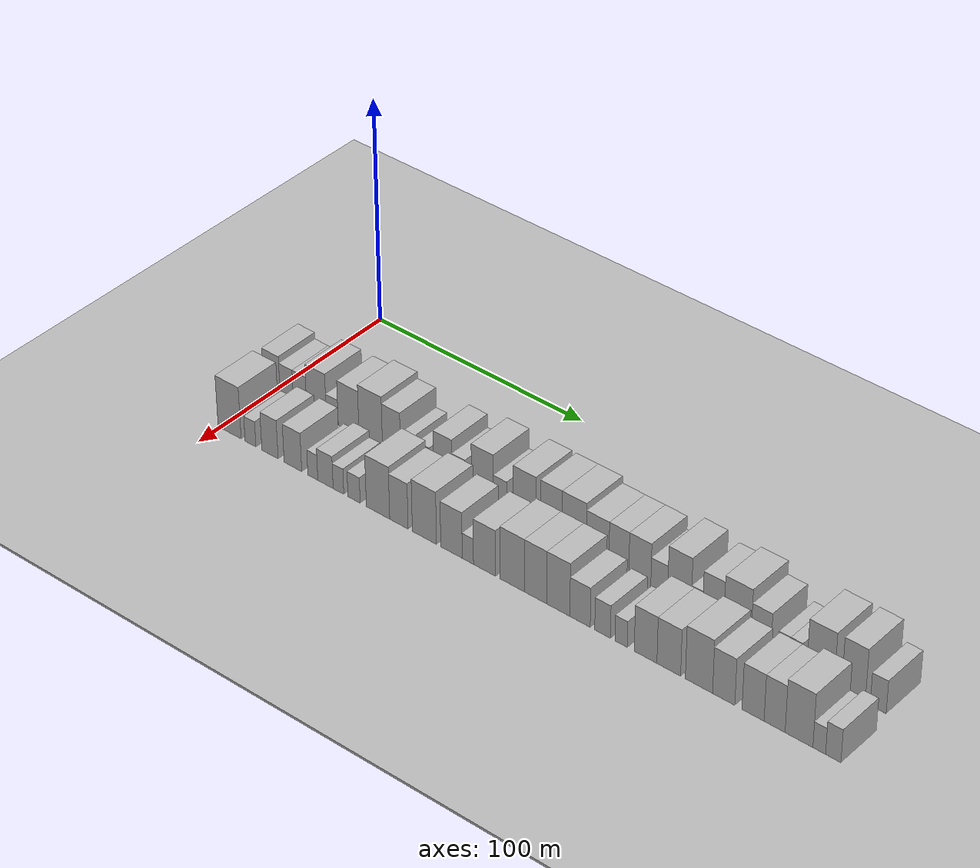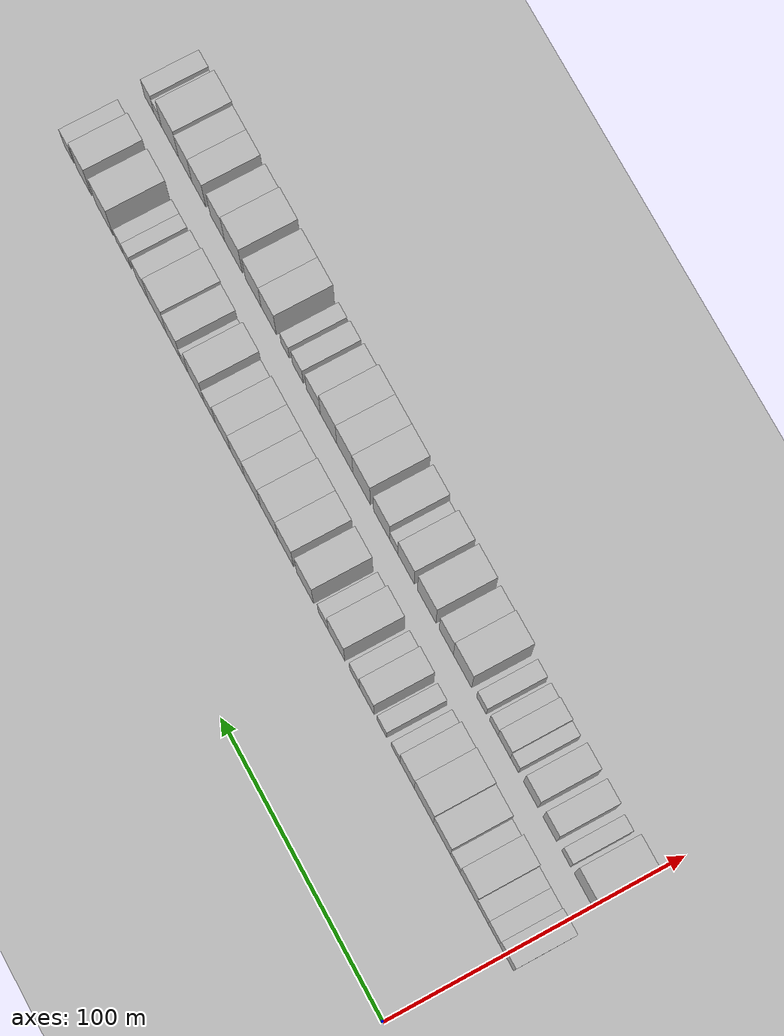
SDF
<sdf version="1.6">
 <world name="default">
  <include><name>ground_plane_1</name><uri>model://HANNAS_ground_plane</uri></include>
  <include>
   <name>ground_plane_2</name>
   <uri>model://HANNAS_ground_plane</uri>
   <pose>100 0 0  0 0 0</pose>
  </include>
  <model name="building_31">
   <static>1</static>
   <pose>50.0000 -0.7885 0 0.000000 0.000000 0.000000</pose>
   <link name="link">
    <pose>0 0 9.00 0 0 0</pose>
    <collision name="collision"><geometry><box><size>20.0000 8.5702 18.0000</size></box></geometry></collision>
    <visual name="visual">
     <cast_shadows>0</cast_shadows>
     <geometry><box><size>20.0000 8.5702 18.0000</size></box></geometry>
     <material>
      <script>
       <uri>model://HANNAS_wall/materials/scripts</uri>
       <uri>model://HANNAS_wall/materials/textures</uri>
       <name>vrc/HANNAS_wall</name>
      </script>
     </material>
    </visual>
   </link>
  </model>
  <model name="building_32">
   <static>1</static>
   <pose>50.0000 6.8658 0 0.000000 0.000000 0.000000</pose>
   <link name="link">
    <pose>0 0 7.50 0 0 0</pose>
    <collision name="collision"><geometry><box><size>20.0000 6.7384 15.0000</size></box></geometry></collision>
    <visual name="visual">
     <cast_shadows>0</cast_shadows>
     <geometry><box><size>20.0000 6.7384 15.0000</size></box></geometry>
     <material>
      <script>
       <uri>model://HANNAS_wall/materials/scripts</uri>
       <uri>model://HANNAS_wall/materials/textures</uri>
       <name>vrc/HANNAS_wall</name>
      </script>
     </material>
    </visual>
   </link>
  </model>
  <model name="building_33">
   <static>1</static>
   <pose>50.0000 13.6078 0 0.000000 0.000000 0.000000</pose>
   <link name="link">
    <pose>0 0 7.50 0 0 0</pose>
    <collision name="collision"><geometry><box><size>20.0000 6.7456 15.0000</size></box></geometry></collision>
    <visual name="visual">
     <cast_shadows>0</cast_shadows>
     <geometry><box><size>20.0000 6.7456 15.0000</size></box></geometry>
     <material>
      <script>
       <uri>model://HANNAS_wall/materials/scripts</uri>
       <uri>model://HANNAS_wall/materials/textures</uri>
       <name>vrc/HANNAS_wall</name>
      </script>
     </material>
    </visual>
   </link>
  </model>
  <model name="building_34">
   <static>1</static>
   <pose>50.0000 21.9241 0 0.000000 0.000000 0.000000</pose>
   <link name="link">
    <pose>0 0 10.50 0 0 0</pose>
    <collision name="collision"><geometry><box><size>20.0000 9.8871 21.0000</size></box></geometry></collision>
    <visual name="visual">
     <cast_shadows>0</cast_shadows>
     <geometry><box><size>20.0000 9.8871 21.0000</size></box></geometry>
     <material>
      <script>
       <uri>model://HANNAS_wall/materials/scripts</uri>
       <uri>model://HANNAS_wall/materials/textures</uri>
       <name>vrc/HANNAS_wall</name>
      </script>
     </material>
    </visual>
   </link>
  </model>
  <model name="building_35">
   <static>1</static>
   <pose>50.0000 29.8331 0 0.000000 0.000000 0.000000</pose>
   <link name="link">
    <pose>0 0 6.00 0 0 0</pose>
    <collision name="collision"><geometry><box><size>20.0000 5.9308 12.0000</size></box></geometry></collision>
    <visual name="visual">
     <cast_shadows>0</cast_shadows>
     <geometry><box><size>20.0000 5.9308 12.0000</size></box></geometry>
     <material>
      <script>
       <uri>model://HANNAS_wall/materials/scripts</uri>
       <uri>model://HANNAS_wall/materials/textures</uri>
       <name>vrc/HANNAS_wall</name>
      </script>
     </material>
    </visual>
   </link>
  </model>
  <model name="building_36">
   <static>1</static>
   <pose>50.0000 37.9600 0 0.000000 0.000000 0.000000</pose>
   <link name="link">
    <pose>0 0 10.50 0 0 0</pose>
    <collision name="collision"><geometry><box><size>20.0000 10.3231 21.0000</size></box></geometry></collision>
    <visual name="visual">
     <cast_shadows>0</cast_shadows>
     <geometry><box><size>20.0000 10.3231 21.0000</size></box></geometry>
     <material>
      <script>
       <uri>model://HANNAS_wall/materials/scripts</uri>
       <uri>model://HANNAS_wall/materials/textures</uri>
       <name>vrc/HANNAS_wall</name>
      </script>
     </material>
    </visual>
   </link>
  </model>
  <model name="building_37">
   <static>1</static>
   <pose>50.0000 48.8931 0 0.000000 0.000000 0.000000</pose>
   <link name="link">
    <pose>0 0 12.00 0 0 0</pose>
    <collision name="collision"><geometry><box><size>20.0000 11.5431 24.0000</size></box></geometry></collision>
    <visual name="visual">
     <cast_shadows>0</cast_shadows>
     <geometry><box><size>20.0000 11.5431 24.0000</size></box></geometry>
     <material>
      <script>
       <uri>model://HANNAS_wall/materials/scripts</uri>
       <uri>model://HANNAS_wall/materials/textures</uri>
       <name>vrc/HANNAS_wall</name>
      </script>
     </material>
    </visual>
   </link>
  </model>
  <model name="building_38">
   <static>1</static>
   <pose>50.0000 59.0876 0 0.000000 0.000000 0.000000</pose>
   <link name="link">
    <pose>0 0 10.50 0 0 0</pose>
    <collision name="collision"><geometry><box><size>20.0000 8.8458 21.0000</size></box></geometry></collision>
    <visual name="visual">
     <cast_shadows>0</cast_shadows>
     <geometry><box><size>20.0000 8.8458 21.0000</size></box></geometry>
     <material>
      <script>
       <uri>model://HANNAS_wall/materials/scripts</uri>
       <uri>model://HANNAS_wall/materials/textures</uri>
       <name>vrc/HANNAS_wall</name>
      </script>
     </material>
    </visual>
   </link>
  </model>
  <model name="building_39">
   <static>1</static>
   <pose>50.0000 66.1097 0 0.000000 0.000000 0.000000</pose>
   <link name="link">
    <pose>0 0 6.00 0 0 0</pose>
    <collision name="collision"><geometry><box><size>20.0000 5.1983 12.0000</size></box></geometry></collision>
    <visual name="visual">
     <cast_shadows>0</cast_shadows>
     <geometry><box><size>20.0000 5.1983 12.0000</size></box></geometry>
     <material>
      <script>
       <uri>model://HANNAS_wall/materials/scripts</uri>
       <uri>model://HANNAS_wall/materials/textures</uri>
       <name>vrc/HANNAS_wall</name>
      </script>
     </material>
    </visual>
   </link>
  </model>
  <model name="building_40">
   <static>1</static>
   <pose>50.0000 74.5952 0 0.000000 0.000000 0.000000</pose>
   <link name="link">
    <pose>0 0 6.00 0 0 0</pose>
    <collision name="collision"><geometry><box><size>20.0000 5.7728 12.0000</size></box></geometry></collision>
    <visual name="visual">
     <cast_shadows>0</cast_shadows>
     <geometry><box><size>20.0000 5.7728 12.0000</size></box></geometry>
     <material>
      <script>
       <uri>model://HANNAS_wall/materials/scripts</uri>
       <uri>model://HANNAS_wall/materials/textures</uri>
       <name>vrc/HANNAS_wall</name>
      </script>
     </material>
    </visual>
   </link>
  </model>
  <model name="building_41">
   <static>1</static>
   <pose>50.0000 83.8726 0 0.000000 0.000000 0.000000</pose>
   <link name="link">
    <pose>0 0 10.50 0 0 0</pose>
    <collision name="collision"><geometry><box><size>20.0000 8.7820 21.0000</size></box></geometry></collision>
    <visual name="visual">
     <cast_shadows>0</cast_shadows>
     <geometry><box><size>20.0000 8.7820 21.0000</size></box></geometry>
     <material>
      <script>
       <uri>model://HANNAS_wall/materials/scripts</uri>
       <uri>model://HANNAS_wall/materials/textures</uri>
       <name>vrc/HANNAS_wall</name>
      </script>
     </material>
    </visual>
   </link>
  </model>
  <model name="building_42">
   <static>1</static>
   <pose>50.0000 91.4099 0 0.000000 0.000000 0.000000</pose>
   <link name="link">
    <pose>0 0 7.50 0 0 0</pose>
    <collision name="collision"><geometry><box><size>20.0000 6.2925 15.0000</size></box></geometry></collision>
    <visual name="visual">
     <cast_shadows>0</cast_shadows>
     <geometry><box><size>20.0000 6.2925 15.0000</size></box></geometry>
     <material>
      <script>
       <uri>model://HANNAS_wall/materials/scripts</uri>
       <uri>model://HANNAS_wall/materials/textures</uri>
       <name>vrc/HANNAS_wall</name>
      </script>
     </material>
    </visual>
   </link>
  </model>
  <model name="building_43">
   <static>1</static>
   <pose>50.0000 102.6996 0 0.000000 0.000000 0.000000</pose>
   <link name="link">
    <pose>0 0 12.00 0 0 0</pose>
    <collision name="collision"><geometry><box><size>20.0000 10.2869 24.0000</size></box></geometry></collision>
    <visual name="visual">
     <cast_shadows>0</cast_shadows>
     <geometry><box><size>20.0000 10.2869 24.0000</size></box></geometry>
     <material>
      <script>
       <uri>model://HANNAS_wall/materials/scripts</uri>
       <uri>model://HANNAS_wall/materials/textures</uri>
       <name>vrc/HANNAS_wall</name>
      </script>
     </material>
    </visual>
   </link>
  </model>
  <model name="building_44">
   <static>1</static>
   <pose>50.0000 110.9824 0 0.000000 0.000000 0.000000</pose>
   <link name="link">
    <pose>0 0 7.50 0 0 0</pose>
    <collision name="collision"><geometry><box><size>20.0000 6.2788 15.0000</size></box></geometry></collision>
    <visual name="visual">
     <cast_shadows>0</cast_shadows>
     <geometry><box><size>20.0000 6.2788 15.0000</size></box></geometry>
     <material>
      <script>
       <uri>model://HANNAS_wall/materials/scripts</uri>
       <uri>model://HANNAS_wall/materials/textures</uri>
       <name>vrc/HANNAS_wall</name>
      </script>
     </material>
    </visual>
   </link>
  </model>
  <model name="building_45">
   <static>1</static>
   <pose>50.0000 122.3922 0 0.000000 0.000000 0.000000</pose>
   <link name="link">
    <pose>0 0 12.00 0 0 0</pose>
    <collision name="collision"><geometry><box><size>20.0000 10.5407 24.0000</size></box></geometry></collision>
    <visual name="visual">
     <cast_shadows>0</cast_shadows>
     <geometry><box><size>20.0000 10.5407 24.0000</size></box></geometry>
     <material>
      <script>
       <uri>model://HANNAS_wall/materials/scripts</uri>
       <uri>model://HANNAS_wall/materials/textures</uri>
       <name>vrc/HANNAS_wall</name>
      </script>
     </material>
    </visual>
   </link>
  </model>
  <model name="building_46">
   <static>1</static>
   <pose>50.0000 134.6356 0 0.000000 0.000000 0.000000</pose>
   <link name="link">
    <pose>0 0 12.00 0 0 0</pose>
    <collision name="collision"><geometry><box><size>20.0000 9.9462 24.0000</size></box></geometry></collision>
    <visual name="visual">
     <cast_shadows>0</cast_shadows>
     <geometry><box><size>20.0000 9.9462 24.0000</size></box></geometry>
     <material>
      <script>
       <uri>model://HANNAS_wall/materials/scripts</uri>
       <uri>model://HANNAS_wall/materials/textures</uri>
       <name>vrc/HANNAS_wall</name>
      </script>
     </material>
    </visual>
   </link>
  </model>
  <model name="building_47">
   <static>1</static>
   <pose>50.0000 145.1121 0 0.000000 0.000000 0.000000</pose>
   <link name="link">
    <pose>0 0 12.00 0 0 0</pose>
    <collision name="collision"><geometry><box><size>20.0000 11.0066 24.0000</size></box></geometry></collision>
    <visual name="visual">
     <cast_shadows>0</cast_shadows>
     <geometry><box><size>20.0000 11.0066 24.0000</size></box></geometry>
     <material>
      <script>
       <uri>model://HANNAS_wall/materials/scripts</uri>
       <uri>model://HANNAS_wall/materials/textures</uri>
       <name>vrc/HANNAS_wall</name>
      </script>
     </material>
    </visual>
   </link>
  </model>
  <model name="building_48">
   <static>1</static>
   <pose>50.0000 155.7052 0 0.000000 0.000000 0.000000</pose>
   <link name="link">
    <pose>0 0 10.50 0 0 0</pose>
    <collision name="collision"><geometry><box><size>20.0000 10.1797 21.0000</size></box></geometry></collision>
    <visual name="visual">
     <cast_shadows>0</cast_shadows>
     <geometry><box><size>20.0000 10.1797 21.0000</size></box></geometry>
     <material>
      <script>
       <uri>model://HANNAS_wall/materials/scripts</uri>
       <uri>model://HANNAS_wall/materials/textures</uri>
       <name>vrc/HANNAS_wall</name>
      </script>
     </material>
    </visual>
   </link>
  </model>
  <model name="building_49">
   <static>1</static>
   <pose>50.0000 165.2450 0 0.000000 0.000000 0.000000</pose>
   <link name="link">
    <pose>0 0 10.50 0 0 0</pose>
    <collision name="collision"><geometry><box><size>20.0000 8.8998 21.0000</size></box></geometry></collision>
    <visual name="visual">
     <cast_shadows>0</cast_shadows>
     <geometry><box><size>20.0000 8.8998 21.0000</size></box></geometry>
     <material>
      <script>
       <uri>model://HANNAS_wall/materials/scripts</uri>
       <uri>model://HANNAS_wall/materials/textures</uri>
       <name>vrc/HANNAS_wall</name>
      </script>
     </material>
    </visual>
   </link>
  </model>
  <model name="building_50">
   <static>1</static>
   <pose>50.0000 174.5735 0 0.000000 0.000000 0.000000</pose>
   <link name="link">
    <pose>0 0 10.50 0 0 0</pose>
    <collision name="collision"><geometry><box><size>20.0000 9.7571 21.0000</size></box></geometry></collision>
    <visual name="visual">
     <cast_shadows>0</cast_shadows>
     <geometry><box><size>20.0000 9.7571 21.0000</size></box></geometry>
     <material>
      <script>
       <uri>model://HANNAS_wall/materials/scripts</uri>
       <uri>model://HANNAS_wall/materials/textures</uri>
       <name>vrc/HANNAS_wall</name>
      </script>
     </material>
    </visual>
   </link>
  </model>
  <model name="building_51">
   <static>1</static>
   <pose>50.0000 183.1616 0 0.000000 0.000000 0.000000</pose>
   <link name="link">
    <pose>0 0 7.50 0 0 0</pose>
    <collision name="collision"><geometry><box><size>20.0000 7.4192 15.0000</size></box></geometry></collision>
    <visual name="visual">
     <cast_shadows>0</cast_shadows>
     <geometry><box><size>20.0000 7.4192 15.0000</size></box></geometry>
     <material>
      <script>
       <uri>model://HANNAS_wall/materials/scripts</uri>
       <uri>model://HANNAS_wall/materials/textures</uri>
       <name>vrc/HANNAS_wall</name>
      </script>
     </material>
    </visual>
   </link>
  </model>
  <model name="building_52">
   <static>1</static>
   <pose>50.0000 192.0234 0 0.000000 0.000000 0.000000</pose>
   <link name="link">
    <pose>0 0 12.00 0 0 0</pose>
    <collision name="collision"><geometry><box><size>20.0000 10.3044 24.0000</size></box></geometry></collision>
    <visual name="visual">
     <cast_shadows>0</cast_shadows>
     <geometry><box><size>20.0000 10.3044 24.0000</size></box></geometry>
     <material>
      <script>
       <uri>model://HANNAS_wall/materials/scripts</uri>
       <uri>model://HANNAS_wall/materials/textures</uri>
       <name>vrc/HANNAS_wall</name>
      </script>
     </material>
    </visual>
   </link>
  </model>
  <model name="building_53">
   <static>1</static>
   <pose>50.0000 199.6400 0 0.000000 0.000000 0.000000</pose>
   <link name="link">
    <pose>0 0 6.00 0 0 0</pose>
    <collision name="collision"><geometry><box><size>20.0000 4.9287 12.0000</size></box></geometry></collision>
    <visual name="visual">
     <cast_shadows>0</cast_shadows>
     <geometry><box><size>20.0000 4.9287 12.0000</size></box></geometry>
     <material>
      <script>
       <uri>model://HANNAS_wall/materials/scripts</uri>
       <uri>model://HANNAS_wall/materials/textures</uri>
       <name>vrc/HANNAS_wall</name>
      </script>
     </material>
    </visual>
   </link>
  </model>
  <model name="building_54">
   <static>1</static>
   <pose>50.0000 206.6869 0 0.000000 0.000000 0.000000</pose>
   <link name="link">
    <pose>0 0 10.50 0 0 0</pose>
    <collision name="collision"><geometry><box><size>20.0000 9.1651 21.0000</size></box></geometry></collision>
    <visual name="visual">
     <cast_shadows>0</cast_shadows>
     <geometry><box><size>20.0000 9.1651 21.0000</size></box></geometry>
     <material>
      <script>
       <uri>model://HANNAS_wall/materials/scripts</uri>
       <uri>model://HANNAS_wall/materials/textures</uri>
       <name>vrc/HANNAS_wall</name>
      </script>
     </material>
    </visual>
   </link>
  </model>
  <model name="building_55">
   <static>1</static>
   <pose>50.0000 217.1138 0 0.000000 0.000000 0.000000</pose>
   <link name="link">
    <pose>0 0 12.00 0 0 0</pose>
    <collision name="collision"><geometry><box><size>20.0000 11.6887 24.0000</size></box></geometry></collision>
    <visual name="visual">
     <cast_shadows>0</cast_shadows>
     <geometry><box><size>20.0000 11.6887 24.0000</size></box></geometry>
     <material>
      <script>
       <uri>model://HANNAS_wall/materials/scripts</uri>
       <uri>model://HANNAS_wall/materials/textures</uri>
       <name>vrc/HANNAS_wall</name>
      </script>
     </material>
    </visual>
   </link>
  </model>
  <model name="building_56">
   <static>1</static>
   <pose>50.0000 227.1906 0 0.000000 0.000000 0.000000</pose>
   <link name="link">
    <pose>0 0 9.00 0 0 0</pose>
    <collision name="collision"><geometry><box><size>20.0000 8.4649 18.0000</size></box></geometry></collision>
    <visual name="visual">
     <cast_shadows>0</cast_shadows>
     <geometry><box><size>20.0000 8.4649 18.0000</size></box></geometry>
     <material>
      <script>
       <uri>model://HANNAS_wall/materials/scripts</uri>
       <uri>model://HANNAS_wall/materials/textures</uri>
       <name>vrc/HANNAS_wall</name>
      </script>
     </material>
    </visual>
   </link>
  </model>
  <model name="building_57">
   <static>1</static>
   <pose>50.0000 236.9264 0 0.000000 0.000000 0.000000</pose>
   <link name="link">
    <pose>0 0 6.00 0 0 0</pose>
    <collision name="collision"><geometry><box><size>20.0000 5.0067 12.0000</size></box></geometry></collision>
    <visual name="visual">
     <cast_shadows>0</cast_shadows>
     <geometry><box><size>20.0000 5.0067 12.0000</size></box></geometry>
     <material>
      <script>
       <uri>model://HANNAS_wall/materials/scripts</uri>
       <uri>model://HANNAS_wall/materials/textures</uri>
       <name>vrc/HANNAS_wall</name>
      </script>
     </material>
    </visual>
   </link>
  </model>
  <model name="building_58">
   <static>1</static>
   <pose>50.0000 241.9658 0 0.000000 0.000000 0.000000</pose>
   <link name="link">
    <pose>0 0 6.00 0 0 0</pose>
    <collision name="collision"><geometry><box><size>20.0000 5.0721 12.0000</size></box></geometry></collision>
    <visual name="visual">
     <cast_shadows>0</cast_shadows>
     <geometry><box><size>20.0000 5.0721 12.0000</size></box></geometry>
     <material>
      <script>
       <uri>model://HANNAS_wall/materials/scripts</uri>
       <uri>model://HANNAS_wall/materials/textures</uri>
       <name>vrc/HANNAS_wall</name>
      </script>
     </material>
    </visual>
   </link>
  </model>
  <model name="building_59">
   <static>1</static>
   <pose>50.0000 252.2399 0 0.000000 0.000000 0.000000</pose>
   <link name="link">
    <pose>0 0 12.00 0 0 0</pose>
    <collision name="collision"><geometry><box><size>20.0000 11.4761 24.0000</size></box></geometry></collision>
    <visual name="visual">
     <cast_shadows>0</cast_shadows>
     <geometry><box><size>20.0000 11.4761 24.0000</size></box></geometry>
     <material>
      <script>
       <uri>model://HANNAS_wall/materials/scripts</uri>
       <uri>model://HANNAS_wall/materials/textures</uri>
       <name>vrc/HANNAS_wall</name>
      </script>
     </material>
    </visual>
   </link>
  </model>
  <model name="building_60">
   <static>1</static>
   <pose>50.0000 265.8508 0 0.000000 0.000000 0.000000</pose>
   <link name="link">
    <pose>0 0 12.00 0 0 0</pose>
    <collision name="collision"><geometry><box><size>20.0000 9.7458 24.0000</size></box></geometry></collision>
    <visual name="visual">
     <cast_shadows>0</cast_shadows>
     <geometry><box><size>20.0000 9.7458 24.0000</size></box></geometry>
     <material>
      <script>
       <uri>model://HANNAS_wall/materials/scripts</uri>
       <uri>model://HANNAS_wall/materials/textures</uri>
       <name>vrc/HANNAS_wall</name>
      </script>
     </material>
    </visual>
   </link>
  </model>
  <model name="building_61">
   <static>1</static>
   <pose>50.0000 275.9889 0 0.000000 0.000000 0.000000</pose>
   <link name="link">
    <pose>0 0 7.50 0 0 0</pose>
    <collision name="collision"><geometry><box><size>20.0000 6.5304 15.0000</size></box></geometry></collision>
    <visual name="visual">
     <cast_shadows>0</cast_shadows>
     <geometry><box><size>20.0000 6.5304 15.0000</size></box></geometry>
     <material>
      <script>
       <uri>model://HANNAS_wall/materials/scripts</uri>
       <uri>model://HANNAS_wall/materials/textures</uri>
       <name>vrc/HANNAS_wall</name>
      </script>
     </material>
    </visual>
   </link>
  </model>
  <model name="building_93">
   <static>1</static>
   <pose>79.0000 5.1922 0 0.000000 0.000000 0.000000</pose>
   <link name="link">
    <pose>0 0 12.00 0 0 0</pose>
    <collision name="collision"><geometry><box><size>20.0000 11.6505 24.0000</size></box></geometry></collision>
    <visual name="visual">
     <cast_shadows>0</cast_shadows>
     <geometry><box><size>20.0000 11.6505 24.0000</size></box></geometry>
     <material>
      <script>
       <uri>model://HANNAS_wall/materials/scripts</uri>
       <uri>model://HANNAS_wall/materials/textures</uri>
       <name>vrc/HANNAS_wall</name>
      </script>
     </material>
    </visual>
   </link>
  </model>
  <model name="building_94">
   <static>1</static>
   <pose>79.0000 15.7318 0 0.000000 0.000000 0.000000</pose>
   <link name="link">
    <pose>0 0 6.00 0 0 0</pose>
    <collision name="collision"><geometry><box><size>20.0000 5.4286 12.0000</size></box></geometry></collision>
    <visual name="visual">
     <cast_shadows>0</cast_shadows>
     <geometry><box><size>20.0000 5.4286 12.0000</size></box></geometry>
     <material>
      <script>
       <uri>model://HANNAS_wall/materials/scripts</uri>
       <uri>model://HANNAS_wall/materials/textures</uri>
       <name>vrc/HANNAS_wall</name>
      </script>
     </material>
    </visual>
   </link>
  </model>
  <model name="building_95">
   <static>1</static>
   <pose>79.0000 25.4994 0 0.000000 0.000000 0.000000</pose>
   <link name="link">
    <pose>0 0 9.00 0 0 0</pose>
    <collision name="collision"><geometry><box><size>20.0000 8.1065 18.0000</size></box></geometry></collision>
    <visual name="visual">
     <cast_shadows>0</cast_shadows>
     <geometry><box><size>20.0000 8.1065 18.0000</size></box></geometry>
     <material>
      <script>
       <uri>model://HANNAS_wall/materials/scripts</uri>
       <uri>model://HANNAS_wall/materials/textures</uri>
       <name>vrc/HANNAS_wall</name>
      </script>
     </material>
    </visual>
   </link>
  </model>
  <model name="building_96">
   <static>1</static>
   <pose>79.0000 36.9092 0 0.000000 0.000000 0.000000</pose>
   <link name="link">
    <pose>0 0 9.00 0 0 0</pose>
    <collision name="collision"><geometry><box><size>20.0000 8.7132 18.0000</size></box></geometry></collision>
    <visual name="visual">
     <cast_shadows>0</cast_shadows>
     <geometry><box><size>20.0000 8.7132 18.0000</size></box></geometry>
     <material>
      <script>
       <uri>model://HANNAS_wall/materials/scripts</uri>
       <uri>model://HANNAS_wall/materials/textures</uri>
       <name>vrc/HANNAS_wall</name>
      </script>
     </material>
    </visual>
   </link>
  </model>
  <model name="building_97">
   <static>1</static>
   <pose>79.0000 46.7136 0 0.000000 0.000000 0.000000</pose>
   <link name="link">
    <pose>0 0 6.00 0 0 0</pose>
    <collision name="collision"><geometry><box><size>20.0000 4.8956 12.0000</size></box></geometry></collision>
    <visual name="visual">
     <cast_shadows>0</cast_shadows>
     <geometry><box><size>20.0000 4.8956 12.0000</size></box></geometry>
     <material>
      <script>
       <uri>model://HANNAS_wall/materials/scripts</uri>
       <uri>model://HANNAS_wall/materials/textures</uri>
       <name>vrc/HANNAS_wall</name>
      </script>
     </material>
    </visual>
   </link>
  </model>
  <model name="building_98">
   <static>1</static>
   <pose>79.0000 52.9090 0 0.000000 0.000000 0.000000</pose>
   <link name="link">
    <pose>0 0 7.50 0 0 0</pose>
    <collision name="collision"><geometry><box><size>20.0000 7.4953 15.0000</size></box></geometry></collision>
    <visual name="visual">
     <cast_shadows>0</cast_shadows>
     <geometry><box><size>20.0000 7.4953 15.0000</size></box></geometry>
     <material>
      <script>
       <uri>model://HANNAS_wall/materials/scripts</uri>
       <uri>model://HANNAS_wall/materials/textures</uri>
       <name>vrc/HANNAS_wall</name>
      </script>
     </material>
    </visual>
   </link>
  </model>
  <model name="building_99">
   <static>1</static>
   <pose>79.0000 59.2433 0 0.000000 0.000000 0.000000</pose>
   <link name="link">
    <pose>0 0 6.00 0 0 0</pose>
    <collision name="collision"><geometry><box><size>20.0000 5.1733 12.0000</size></box></geometry></collision>
    <visual name="visual">
     <cast_shadows>0</cast_shadows>
     <geometry><box><size>20.0000 5.1733 12.0000</size></box></geometry>
     <material>
      <script>
       <uri>model://HANNAS_wall/materials/scripts</uri>
       <uri>model://HANNAS_wall/materials/textures</uri>
       <name>vrc/HANNAS_wall</name>
      </script>
     </material>
    </visual>
   </link>
  </model>
  <model name="building_100">
   <static>1</static>
   <pose>79.0000 66.7829 0 0.000000 0.000000 0.000000</pose>
   <link name="link">
    <pose>0 0 6.00 0 0 0</pose>
    <collision name="collision"><geometry><box><size>20.0000 5.9058 12.0000</size></box></geometry></collision>
    <visual name="visual">
     <cast_shadows>0</cast_shadows>
     <geometry><box><size>20.0000 5.9058 12.0000</size></box></geometry>
     <material>
      <script>
       <uri>model://HANNAS_wall/materials/scripts</uri>
       <uri>model://HANNAS_wall/materials/textures</uri>
       <name>vrc/HANNAS_wall</name>
      </script>
     </material>
    </visual>
   </link>
  </model>
  <model name="building_101">
   <static>1</static>
   <pose>79.0000 78.3287 0 0.000000 0.000000 0.000000</pose>
   <link name="link">
    <pose>0 0 12.00 0 0 0</pose>
    <collision name="collision"><geometry><box><size>20.0000 11.1857 24.0000</size></box></geometry></collision>
    <visual name="visual">
     <cast_shadows>0</cast_shadows>
     <geometry><box><size>20.0000 11.1857 24.0000</size></box></geometry>
     <material>
      <script>
       <uri>model://HANNAS_wall/materials/scripts</uri>
       <uri>model://HANNAS_wall/materials/textures</uri>
       <name>vrc/HANNAS_wall</name>
      </script>
     </material>
    </visual>
   </link>
  </model>
  <model name="building_102">
   <static>1</static>
   <pose>79.0000 88.2917 0 0.000000 0.000000 0.000000</pose>
   <link name="link">
    <pose>0 0 10.50 0 0 0</pose>
    <collision name="collision"><geometry><box><size>20.0000 8.7404 21.0000</size></box></geometry></collision>
    <visual name="visual">
     <cast_shadows>0</cast_shadows>
     <geometry><box><size>20.0000 8.7404 21.0000</size></box></geometry>
     <material>
      <script>
       <uri>model://HANNAS_wall/materials/scripts</uri>
       <uri>model://HANNAS_wall/materials/textures</uri>
       <name>vrc/HANNAS_wall</name>
      </script>
     </material>
    </visual>
   </link>
  </model>
  <model name="building_103">
   <static>1</static>
   <pose>79.0000 100.3421 0 0.000000 0.000000 0.000000</pose>
   <link name="link">
    <pose>0 0 12.00 0 0 0</pose>
    <collision name="collision"><geometry><box><size>20.0000 11.3603 24.0000</size></box></geometry></collision>
    <visual name="visual">
     <cast_shadows>0</cast_shadows>
     <geometry><box><size>20.0000 11.3603 24.0000</size></box></geometry>
     <material>
      <script>
       <uri>model://HANNAS_wall/materials/scripts</uri>
       <uri>model://HANNAS_wall/materials/textures</uri>
       <name>vrc/HANNAS_wall</name>
      </script>
     </material>
    </visual>
   </link>
  </model>
  <model name="building_104">
   <static>1</static>
   <pose>79.0000 113.0134 0 0.000000 0.000000 0.000000</pose>
   <link name="link">
    <pose>0 0 10.50 0 0 0</pose>
    <collision name="collision"><geometry><box><size>20.0000 9.9824 21.0000</size></box></geometry></collision>
    <visual name="visual">
     <cast_shadows>0</cast_shadows>
     <geometry><box><size>20.0000 9.9824 21.0000</size></box></geometry>
     <material>
      <script>
       <uri>model://HANNAS_wall/materials/scripts</uri>
       <uri>model://HANNAS_wall/materials/textures</uri>
       <name>vrc/HANNAS_wall</name>
      </script>
     </material>
    </visual>
   </link>
  </model>
  <model name="building_105">
   <static>1</static>
   <pose>79.0000 120.6025 0 0.000000 0.000000 0.000000</pose>
   <link name="link">
    <pose>0 0 6.00 0 0 0</pose>
    <collision name="collision"><geometry><box><size>20.0000 5.1959 12.0000</size></box></geometry></collision>
    <visual name="visual">
     <cast_shadows>0</cast_shadows>
     <geometry><box><size>20.0000 5.1959 12.0000</size></box></geometry>
     <material>
      <script>
       <uri>model://HANNAS_wall/materials/scripts</uri>
       <uri>model://HANNAS_wall/materials/textures</uri>
       <name>vrc/HANNAS_wall</name>
      </script>
     </material>
    </visual>
   </link>
  </model>
  <model name="building_106">
   <static>1</static>
   <pose>79.0000 128.2987 0 0.000000 0.000000 0.000000</pose>
   <link name="link">
    <pose>0 0 10.50 0 0 0</pose>
    <collision name="collision"><geometry><box><size>20.0000 10.1965 21.0000</size></box></geometry></collision>
    <visual name="visual">
     <cast_shadows>0</cast_shadows>
     <geometry><box><size>20.0000 10.1965 21.0000</size></box></geometry>
     <material>
      <script>
       <uri>model://HANNAS_wall/materials/scripts</uri>
       <uri>model://HANNAS_wall/materials/textures</uri>
       <name>vrc/HANNAS_wall</name>
      </script>
     </material>
    </visual>
   </link>
  </model>
  <model name="building_107">
   <static>1</static>
   <pose>79.0000 140.9201 0 0.000000 0.000000 0.000000</pose>
   <link name="link">
    <pose>0 0 12.00 0 0 0</pose>
    <collision name="collision"><geometry><box><size>20.0000 11.0461 24.0000</size></box></geometry></collision>
    <visual name="visual">
     <cast_shadows>0</cast_shadows>
     <geometry><box><size>20.0000 11.0461 24.0000</size></box></geometry>
     <material>
      <script>
       <uri>model://HANNAS_wall/materials/scripts</uri>
       <uri>model://HANNAS_wall/materials/textures</uri>
       <name>vrc/HANNAS_wall</name>
      </script>
     </material>
    </visual>
   </link>
  </model>
  <model name="building_108">
   <static>1</static>
   <pose>79.0000 151.5209 0 0.000000 0.000000 0.000000</pose>
   <link name="link">
    <pose>0 0 12.00 0 0 0</pose>
    <collision name="collision"><geometry><box><size>20.0000 10.1554 24.0000</size></box></geometry></collision>
    <visual name="visual">
     <cast_shadows>0</cast_shadows>
     <geometry><box><size>20.0000 10.1554 24.0000</size></box></geometry>
     <material>
      <script>
       <uri>model://HANNAS_wall/materials/scripts</uri>
       <uri>model://HANNAS_wall/materials/textures</uri>
       <name>vrc/HANNAS_wall</name>
      </script>
     </material>
    </visual>
   </link>
  </model>
  <model name="building_109">
   <static>1</static>
   <pose>79.0000 161.7505 0 0.000000 0.000000 0.000000</pose>
   <link name="link">
    <pose>0 0 12.00 0 0 0</pose>
    <collision name="collision"><geometry><box><size>20.0000 10.3038 24.0000</size></box></geometry></collision>
    <visual name="visual">
     <cast_shadows>0</cast_shadows>
     <geometry><box><size>20.0000 10.3038 24.0000</size></box></geometry>
     <material>
      <script>
       <uri>model://HANNAS_wall/materials/scripts</uri>
       <uri>model://HANNAS_wall/materials/textures</uri>
       <name>vrc/HANNAS_wall</name>
      </script>
     </material>
    </visual>
   </link>
  </model>
  <model name="building_110">
   <static>1</static>
   <pose>79.0000 171.3916 0 0.000000 0.000000 0.000000</pose>
   <link name="link">
    <pose>0 0 9.00 0 0 0</pose>
    <collision name="collision"><geometry><box><size>20.0000 8.9785 18.0000</size></box></geometry></collision>
    <visual name="visual">
     <cast_shadows>0</cast_shadows>
     <geometry><box><size>20.0000 8.9785 18.0000</size></box></geometry>
     <material>
      <script>
       <uri>model://HANNAS_wall/materials/scripts</uri>
       <uri>model://HANNAS_wall/materials/textures</uri>
       <name>vrc/HANNAS_wall</name>
      </script>
     </material>
    </visual>
   </link>
  </model>
  <model name="building_111">
   <static>1</static>
   <pose>79.0000 181.3426 0 0.000000 0.000000 0.000000</pose>
   <link name="link">
    <pose>0 0 7.50 0 0 0</pose>
    <collision name="collision"><geometry><box><size>20.0000 6.9234 15.0000</size></box></geometry></collision>
    <visual name="visual">
     <cast_shadows>0</cast_shadows>
     <geometry><box><size>20.0000 6.9234 15.0000</size></box></geometry>
     <material>
      <script>
       <uri>model://HANNAS_wall/materials/scripts</uri>
       <uri>model://HANNAS_wall/materials/textures</uri>
       <name>vrc/HANNAS_wall</name>
      </script>
     </material>
    </visual>
   </link>
  </model>
  <model name="building_112">
   <static>1</static>
   <pose>79.0000 189.4913 0 0.000000 0.000000 0.000000</pose>
   <link name="link">
    <pose>0 0 6.00 0 0 0</pose>
    <collision name="collision"><geometry><box><size>20.0000 5.3741 12.0000</size></box></geometry></collision>
    <visual name="visual">
     <cast_shadows>0</cast_shadows>
     <geometry><box><size>20.0000 5.3741 12.0000</size></box></geometry>
     <material>
      <script>
       <uri>model://HANNAS_wall/materials/scripts</uri>
       <uri>model://HANNAS_wall/materials/textures</uri>
       <name>vrc/HANNAS_wall</name>
      </script>
     </material>
    </visual>
   </link>
  </model>
  <model name="building_113">
   <static>1</static>
   <pose>79.0000 200.0751 0 0.000000 0.000000 0.000000</pose>
   <link name="link">
    <pose>0 0 10.50 0 0 0</pose>
    <collision name="collision"><geometry><box><size>20.0000 9.7935 21.0000</size></box></geometry></collision>
    <visual name="visual">
     <cast_shadows>0</cast_shadows>
     <geometry><box><size>20.0000 9.7935 21.0000</size></box></geometry>
     <material>
      <script>
       <uri>model://HANNAS_wall/materials/scripts</uri>
       <uri>model://HANNAS_wall/materials/textures</uri>
       <name>vrc/HANNAS_wall</name>
      </script>
     </material>
    </visual>
   </link>
  </model>
  <model name="building_114">
   <static>1</static>
   <pose>79.0000 210.0560 0 0.000000 0.000000 0.000000</pose>
   <link name="link">
    <pose>0 0 10.50 0 0 0</pose>
    <collision name="collision"><geometry><box><size>20.0000 10.1684 21.0000</size></box></geometry></collision>
    <visual name="visual">
     <cast_shadows>0</cast_shadows>
     <geometry><box><size>20.0000 10.1684 21.0000</size></box></geometry>
     <material>
      <script>
       <uri>model://HANNAS_wall/materials/scripts</uri>
       <uri>model://HANNAS_wall/materials/textures</uri>
       <name>vrc/HANNAS_wall</name>
      </script>
     </material>
    </visual>
   </link>
  </model>
  <model name="building_115">
   <static>1</static>
   <pose>79.0000 222.9158 0 0.000000 0.000000 0.000000</pose>
   <link name="link">
    <pose>0 0 12.00 0 0 0</pose>
    <collision name="collision"><geometry><box><size>20.0000 11.5513 24.0000</size></box></geometry></collision>
    <visual name="visual">
     <cast_shadows>0</cast_shadows>
     <geometry><box><size>20.0000 11.5513 24.0000</size></box></geometry>
     <material>
      <script>
       <uri>model://HANNAS_wall/materials/scripts</uri>
       <uri>model://HANNAS_wall/materials/textures</uri>
       <name>vrc/HANNAS_wall</name>
      </script>
     </material>
    </visual>
   </link>
  </model>
  <model name="building_116">
   <static>1</static>
   <pose>79.0000 233.3715 0 0.000000 0.000000 0.000000</pose>
   <link name="link">
    <pose>0 0 10.50 0 0 0</pose>
    <collision name="collision"><geometry><box><size>20.0000 9.3600 21.0000</size></box></geometry></collision>
    <visual name="visual">
     <cast_shadows>0</cast_shadows>
     <geometry><box><size>20.0000 9.3600 21.0000</size></box></geometry>
     <material>
      <script>
       <uri>model://HANNAS_wall/materials/scripts</uri>
       <uri>model://HANNAS_wall/materials/textures</uri>
       <name>vrc/HANNAS_wall</name>
      </script>
     </material>
    </visual>
   </link>
  </model>
  <model name="building_117">
   <static>1</static>
   <pose>79.0000 245.6445 0 0.000000 0.000000 0.000000</pose>
   <link name="link">
    <pose>0 0 10.50 0 0 0</pose>
    <collision name="collision"><geometry><box><size>20.0000 9.1861 21.0000</size></box></geometry></collision>
    <visual name="visual">
     <cast_shadows>0</cast_shadows>
     <geometry><box><size>20.0000 9.1861 21.0000</size></box></geometry>
     <material>
      <script>
       <uri>model://HANNAS_wall/materials/scripts</uri>
       <uri>model://HANNAS_wall/materials/textures</uri>
       <name>vrc/HANNAS_wall</name>
      </script>
     </material>
    </visual>
   </link>
  </model>
  <model name="building_118">
   <static>1</static>
   <pose>79.0000 254.5709 0 0.000000 0.000000 0.000000</pose>
   <link name="link">
    <pose>0 0 10.50 0 0 0</pose>
    <collision name="collision"><geometry><box><size>20.0000 8.6666 21.0000</size></box></geometry></collision>
    <visual name="visual">
     <cast_shadows>0</cast_shadows>
     <geometry><box><size>20.0000 8.6666 21.0000</size></box></geometry>
     <material>
      <script>
       <uri>model://HANNAS_wall/materials/scripts</uri>
       <uri>model://HANNAS_wall/materials/textures</uri>
       <name>vrc/HANNAS_wall</name>
      </script>
     </material>
    </visual>
   </link>
  </model>
  <model name="building_119">
   <static>1</static>
   <pose>79.0000 264.5984 0 0.000000 0.000000 0.000000</pose>
   <link name="link">
    <pose>0 0 12.00 0 0 0</pose>
    <collision name="collision"><geometry><box><size>20.0000 11.3885 24.0000</size></box></geometry></collision>
    <visual name="visual">
     <cast_shadows>0</cast_shadows>
     <geometry><box><size>20.0000 11.3885 24.0000</size></box></geometry>
     <material>
      <script>
       <uri>model://HANNAS_wall/materials/scripts</uri>
       <uri>model://HANNAS_wall/materials/textures</uri>
       <name>vrc/HANNAS_wall</name>
      </script>
     </material>
    </visual>
   </link>
  </model>
  <model name="building_120">
   <static>1</static>
   <pose>79.0000 272.8621 0 0.000000 0.000000 0.000000</pose>
   <link name="link">
    <pose>0 0 6.00 0 0 0</pose>
    <collision name="collision"><geometry><box><size>20.0000 5.1389 12.0000</size></box></geometry></collision>
    <visual name="visual">
     <cast_shadows>0</cast_shadows>
     <geometry><box><size>20.0000 5.1389 12.0000</size></box></geometry>
     <material>
      <script>
       <uri>model://HANNAS_wall/materials/scripts</uri>
       <uri>model://HANNAS_wall/materials/textures</uri>
       <name>vrc/HANNAS_wall</name>
      </script>
     </material>
    </visual>
   </link>
  </model>
  <model name="building_121">
   <static>1</static>
   <pose>79.0000 278.5339 0 0.000000 0.000000 0.000000</pose>
   <link name="link">
    <pose>0 0 7.50 0 0 0</pose>
    <collision name="collision"><geometry><box><size>20.0000 6.2047 15.0000</size></box></geometry></collision>
    <visual name="visual">
     <cast_shadows>0</cast_shadows>
     <geometry><box><size>20.0000 6.2047 15.0000</size></box></geometry>
     <material>
      <script>
       <uri>model://HANNAS_wall/materials/scripts</uri>
       <uri>model://HANNAS_wall/materials/textures</uri>
       <name>vrc/HANNAS_wall</name>
      </script>
     </material>
    </visual>
   </link>
  </model>
 </world>
</sdf>
